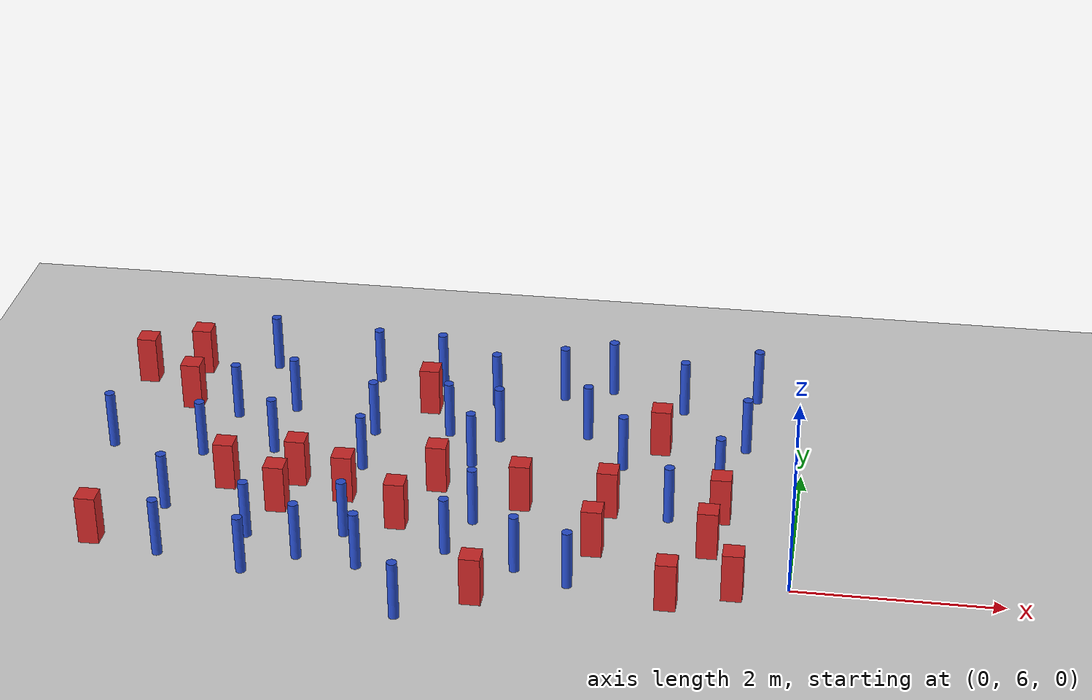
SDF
<sdf version="1.6">
 <world name="default">
  <model name="ground_plane">
   <static>1</static>
   <link name="link">
    <collision name="collision">
     <geometry><plane><normal>0 0 1</normal><size>100 100</size></plane></geometry>
     <surface><friction><ode><mu>100</mu><mu2>50</mu2></ode></friction></surface>
    </collision>
    <visual name="visual">
     <cast_shadows>0</cast_shadows>
     <geometry><plane><normal>0 0 1</normal><size>100 100</size></plane></geometry>
     <material>
      <ambient>1.0 1.0 1.0 1.0</ambient>
      <diffuse>0.8 0.8 0.8 1.0</diffuse>
      <specular>0.01 0.01 0.01 1.000000</specular>
     </material>
    </visual>
   </link>
  </model>
  <model name="square_post_obstacle6">
   <static>true</static>
   <pose>-5.04222654512 6.75807206972 1.91545236811e-07 -7.35059704564e-06 1.12565212e-07 2.39332434364e-05</pose>
   <link name="link">
    <pose>0 0 0.25 0 -0 0</pose>
    <inertial>
     <mass>100</mass>
     <inertia>
      <ixx>0.166667</ixx>
      <ixy>0</ixy>
      <ixz>0</ixz>
      <iyy>0.166667</iyy>
      <iyz>0</iyz>
      <izz>0.166667</izz>
     </inertia>
    </inertial>
    <collision name="collision"><geometry><box><size>.2 .2 .5</size></box></geometry></collision>
    <visual name="visual">
     <geometry><box><size>.2 .2 .5</size></box></geometry>
     <material>
      <script><name>Gazebo/Red</name><uri>file://media/materials/scripts/gazebo.material</uri></script>
     </material>
    </visual>
   </link>
  </model>
  <model name="pole_obstacle6">
   <static>true</static>
   <pose>-5.83699710048 8.39616868612 7.38925637345e-09 -8.471706928e-08 1.24976765081e-08 -1.74513093015e-07</pose>
   <link name="link">
    <pose>0 0 0.3 0 -0 0</pose>
    <inertial>
     <mass>1</mass>
     <inertia><ixx>0.145833</ixx><ixy>0</ixy><ixz>0</ixz><iyy>0.145833</iyy><iyz>0</iyz><izz>0.125</izz></inertia>
    </inertial>
    <collision name="collision">
     <geometry><cylinder><radius>0.05</radius><length>.6</length></cylinder></geometry>
    </collision>
    <visual name="visual">
     <geometry><cylinder><radius>0.05</radius><length>.6</length></cylinder></geometry>
     <material>
      <script><name>Gazebo/Blue</name><uri>file://media/materials/scripts/gazebo.material</uri></script>
     </material>
    </visual>
   </link>
  </model>
  <model name="square_post_obstacle10">
   <static>true</static>
   <pose>-3.8304520646 6.61883451732 1.91545236811e-07 -7.35059704564e-06 1.12565212e-07 2.39332434364e-05</pose>
   <link name="link">
    <pose>0 0 0.25 0 -0 0</pose>
    <inertial>
     <mass>100</mass>
     <inertia>
      <ixx>0.166667</ixx>
      <ixy>0</ixy>
      <ixz>0</ixz>
      <iyy>0.166667</iyy>
      <iyz>0</iyz>
      <izz>0.166667</izz>
     </inertia>
    </inertial>
    <collision name="collision"><geometry><box><size>.2 .2 .5</size></box></geometry></collision>
    <visual name="visual">
     <geometry><box><size>.2 .2 .5</size></box></geometry>
     <material>
      <script><name>Gazebo/Red</name><uri>file://media/materials/scripts/gazebo.material</uri></script>
     </material>
    </visual>
   </link>
  </model>
  <model name="pole_obstacle11">
   <static>true</static>
   <pose>-4.07201410686 5.84191338444 7.38925637345e-09 -8.47170692796e-08 1.24976764786e-08 -1.74513093032e-07</pose>
   <link name="link">
    <pose>0 0 0.3 0 -0 0</pose>
    <inertial>
     <mass>1</mass>
     <inertia><ixx>0.145833</ixx><ixy>0</ixy><ixz>0</ixz><iyy>0.145833</iyy><iyz>0</iyz><izz>0.125</izz></inertia>
    </inertial>
    <collision name="collision">
     <geometry><cylinder><radius>0.05</radius><length>.6</length></cylinder></geometry>
    </collision>
    <visual name="visual">
     <geometry><cylinder><radius>0.05</radius><length>.6</length></cylinder></geometry>
     <material>
      <script><name>Gazebo/Blue</name><uri>file://media/materials/scripts/gazebo.material</uri></script>
     </material>
    </visual>
   </link>
  </model>
  <model name="pole_obstacle12">
   <static>true</static>
   <pose>-6.95213012178 7.66707469394 7.38925637345e-09 -8.47170692796e-08 1.24976764786e-08 -1.74513093032e-07</pose>
   <link name="link">
    <pose>0 0 0.3 0 -0 0</pose>
    <inertial>
     <mass>1</mass>
     <inertia><ixx>0.145833</ixx><ixy>0</ixy><ixz>0</ixz><iyy>0.145833</iyy><iyz>0</iyz><izz>0.125</izz></inertia>
    </inertial>
    <collision name="collision">
     <geometry><cylinder><radius>0.05</radius><length>.6</length></cylinder></geometry>
    </collision>
    <visual name="visual">
     <geometry><cylinder><radius>0.05</radius><length>.6</length></cylinder></geometry>
     <material>
      <script><name>Gazebo/Blue</name><uri>file://media/materials/scripts/gazebo.material</uri></script>
     </material>
    </visual>
   </link>
  </model>
  <model name="pole_obstacle14">
   <static>true</static>
   <pose>-3.08421789567 8.29486062052 7.38925637345e-09 -8.47170692793e-08 1.24976764408e-08 -1.74513093041e-07</pose>
   <link name="link">
    <pose>0 0 0.3 0 -0 0</pose>
    <inertial>
     <mass>1</mass>
     <inertia><ixx>0.145833</ixx><ixy>0</ixy><ixz>0</ixz><iyy>0.145833</iyy><iyz>0</iyz><izz>0.125</izz></inertia>
    </inertial>
    <collision name="collision">
     <geometry><cylinder><radius>0.05</radius><length>.6</length></cylinder></geometry>
    </collision>
    <visual name="visual">
     <geometry><cylinder><radius>0.05</radius><length>.6</length></cylinder></geometry>
     <material>
      <script><name>Gazebo/Blue</name><uri>file://media/materials/scripts/gazebo.material</uri></script>
     </material>
    </visual>
   </link>
  </model>
  <model name="square_post_obstacle33">
   <static>true</static>
   <pose>-4.94480398703 7.25404683142 1.91545236811e-07 -7.35059704564e-06 1.12565212e-07 2.39332434364e-05</pose>
   <link name="link">
    <pose>0 0 0.25 0 -0 0</pose>
    <inertial>
     <mass>100</mass>
     <inertia>
      <ixx>0.166667</ixx>
      <ixy>0</ixy>
      <ixz>0</ixz>
      <iyy>0.166667</iyy>
      <iyz>0</iyz>
      <izz>0.166667</izz>
     </inertia>
    </inertial>
    <collision name="collision"><geometry><box><size>.2 .2 .5</size></box></geometry></collision>
    <visual name="visual">
     <geometry><box><size>.2 .2 .5</size></box></geometry>
     <material>
      <script><name>Gazebo/Red</name><uri>file://media/materials/scripts/gazebo.material</uri></script>
     </material>
    </visual>
   </link>
  </model>
  <model name="pole_obstacle32">
   <static>true</static>
   <pose>-3.60720750429 8.32943406692 7.38925637345e-09 -8.47170692799e-08 1.24976765012e-08 -1.74513093021e-07</pose>
   <link name="link">
    <pose>0 0 0.3 0 -0 0</pose>
    <inertial>
     <mass>1</mass>
     <inertia><ixx>0.145833</ixx><ixy>0</ixy><ixz>0</ixz><iyy>0.145833</iyy><iyz>0</iyz><izz>0.125</izz></inertia>
    </inertial>
    <collision name="collision">
     <geometry><cylinder><radius>0.05</radius><length>.6</length></cylinder></geometry>
    </collision>
    <visual name="visual">
     <geometry><cylinder><radius>0.05</radius><length>.6</length></cylinder></geometry>
     <material>
      <script><name>Gazebo/Blue</name><uri>file://media/materials/scripts/gazebo.material</uri></script>
     </material>
    </visual>
   </link>
  </model>
  <model name="pole_obstacle36">
   <static>true</static>
   <pose>-3.10428934199 6.74589195194 7.38925637345e-09 -8.47170692798e-08 1.24976765033e-08 -1.74513093019e-07</pose>
   <link name="link">
    <pose>0 0 0.3 0 -0 0</pose>
    <inertial>
     <mass>1</mass>
     <inertia><ixx>0.145833</ixx><ixy>0</ixy><ixz>0</ixz><iyy>0.145833</iyy><iyz>0</iyz><izz>0.125</izz></inertia>
    </inertial>
    <collision name="collision">
     <geometry><cylinder><radius>0.05</radius><length>.6</length></cylinder></geometry>
    </collision>
    <visual name="visual">
     <geometry><cylinder><radius>0.05</radius><length>.6</length></cylinder></geometry>
     <material>
      <script><name>Gazebo/Blue</name><uri>file://media/materials/scripts/gazebo.material</uri></script>
     </material>
    </visual>
   </link>
  </model>
  <model name="square_post_obstacle37">
   <static>true</static>
   <pose>-1.11692758528 5.6239052445 1.91545236811e-07 -7.35059704564e-06 1.12565212e-07 2.39332434364e-05</pose>
   <link name="link">
    <pose>0 0 0.25 0 -0 0</pose>
    <inertial>
     <mass>100</mass>
     <inertia>
      <ixx>0.166667</ixx>
      <ixy>0</ixy>
      <ixz>0</ixz>
      <iyy>0.166667</iyy>
      <iyz>0</iyz>
      <izz>0.166667</izz>
     </inertia>
    </inertial>
    <collision name="collision"><geometry><box><size>.2 .2 .5</size></box></geometry></collision>
    <visual name="visual">
     <geometry><box><size>.2 .2 .5</size></box></geometry>
     <material>
      <script><name>Gazebo/Red</name><uri>file://media/materials/scripts/gazebo.material</uri></script>
     </material>
    </visual>
   </link>
  </model>
  <model name="square_post_obstacle39">
   <static>true</static>
   <pose>-3.55115821189 7.33247185414 1.91545236811e-07 -7.35059704564e-06 1.12565212e-07 2.39332434364e-05</pose>
   <link name="link">
    <pose>0 0 0.25 0 -0 0</pose>
    <inertial>
     <mass>100</mass>
     <inertia>
      <ixx>0.166667</ixx>
      <ixy>0</ixy>
      <ixz>0</ixz>
      <iyy>0.166667</iyy>
      <iyz>0</iyz>
      <izz>0.166667</izz>
     </inertia>
    </inertial>
    <collision name="collision"><geometry><box><size>.2 .2 .5</size></box></geometry></collision>
    <visual name="visual">
     <geometry><box><size>.2 .2 .5</size></box></geometry>
     <material>
      <script><name>Gazebo/Red</name><uri>file://media/materials/scripts/gazebo.material</uri></script>
     </material>
    </visual>
   </link>
  </model>
  <model name="square_post_obstacle49">
   <static>true</static>
   <pose>-5.62773222494 7.09899345736 1.91545236811e-07 -7.35059704564e-06 1.12565212e-07 2.39332434364e-05</pose>
   <link name="link">
    <pose>0 0 0.25 0 -0 0</pose>
    <inertial>
     <mass>100</mass>
     <inertia>
      <ixx>0.166667</ixx>
      <ixy>0</ixy>
      <ixz>0</ixz>
      <iyy>0.166667</iyy>
      <iyz>0</iyz>
      <izz>0.166667</izz>
     </inertia>
    </inertial>
    <collision name="collision"><geometry><box><size>.2 .2 .5</size></box></geometry></collision>
    <visual name="visual">
     <geometry><box><size>.2 .2 .5</size></box></geometry>
     <material>
      <script><name>Gazebo/Red</name><uri>file://media/materials/scripts/gazebo.material</uri></script>
     </material>
    </visual>
   </link>
  </model>
  <model name="square_post_obstacle51">
   <static>true</static>
   <pose>-6.6805653706 5.97484447035 1.91545236811e-07 -7.35059704564e-06 1.12565212e-07 2.39332434364e-05</pose>
   <link name="link">
    <pose>0 0 0.25 0 -0 0</pose>
    <inertial>
     <mass>100</mass>
     <inertia>
      <ixx>0.166667</ixx>
      <ixy>0</ixy>
      <ixz>0</ixz>
      <iyy>0.166667</iyy>
      <iyz>0</iyz>
      <izz>0.166667</izz>
     </inertia>
    </inertial>
    <collision name="collision"><geometry><box><size>.2 .2 .5</size></box></geometry></collision>
    <visual name="visual">
     <geometry><box><size>.2 .2 .5</size></box></geometry>
     <material>
      <script><name>Gazebo/Red</name><uri>file://media/materials/scripts/gazebo.material</uri></script>
     </material>
    </visual>
   </link>
  </model>
  <model name="pole_obstacle51">
   <static>true</static>
   <pose>-2.19869617125 8.4587377386 7.38925637345e-09 -8.47170692793e-08 1.24976764408e-08 -1.74513093041e-07</pose>
   <link name="link">
    <pose>0 0 0.3 0 -0 0</pose>
    <inertial>
     <mass>1</mass>
     <inertia><ixx>0.145833</ixx><ixy>0</ixy><ixz>0</ixz><iyy>0.145833</iyy><iyz>0</iyz><izz>0.125</izz></inertia>
    </inertial>
    <collision name="collision">
     <geometry><cylinder><radius>0.05</radius><length>.6</length></cylinder></geometry>
    </collision>
    <visual name="visual">
     <geometry><cylinder><radius>0.05</radius><length>.6</length></cylinder></geometry>
     <material>
      <script><name>Gazebo/Blue</name><uri>file://media/materials/scripts/gazebo.material</uri></script>
     </material>
    </visual>
   </link>
  </model>
  <model name="pole_obstacle58">
   <static>true</static>
   <pose>-4.52280086864 9.32079651259 7.38925637345e-09 -8.471706928e-08 1.24976765081e-08 -1.74513093015e-07</pose>
   <link name="link">
    <pose>0 0 0.3 0 -0 0</pose>
    <inertial>
     <mass>1</mass>
     <inertia><ixx>0.145833</ixx><ixy>0</ixy><ixz>0</ixz><iyy>0.145833</iyy><iyz>0</iyz><izz>0.125</izz></inertia>
    </inertial>
    <collision name="collision">
     <geometry><cylinder><radius>0.05</radius><length>.6</length></cylinder></geometry>
    </collision>
    <visual name="visual">
     <geometry><cylinder><radius>0.05</radius><length>.6</length></cylinder></geometry>
     <material>
      <script><name>Gazebo/Blue</name><uri>file://media/materials/scripts/gazebo.material</uri></script>
     </material>
    </visual>
   </link>
  </model>
  <model name="square_post_obstacle71">
   <static>true</static>
   <pose>-6.4228862466 9.30618783547 1.91545236811e-07 -7.35059704564e-06 1.12565212e-07 2.39332434364e-05</pose>
   <link name="link">
    <pose>0 0 0.25 0 -0 0</pose>
    <inertial>
     <mass>100</mass>
     <inertia>
      <ixx>0.166667</ixx>
      <ixy>0</ixy>
      <ixz>0</ixz>
      <iyy>0.166667</iyy>
      <iyz>0</iyz>
      <izz>0.166667</izz>
     </inertia>
    </inertial>
    <collision name="collision"><geometry><box><size>.2 .2 .5</size></box></geometry></collision>
    <visual name="visual">
     <geometry><box><size>.2 .2 .5</size></box></geometry>
     <material>
      <script><name>Gazebo/Red</name><uri>file://media/materials/scripts/gazebo.material</uri></script>
     </material>
    </visual>
   </link>
  </model>
  <model name="pole_obstacle70">
   <static>true</static>
   <pose>-0.791818067919 7.64563131138 7.38925637345e-09 -8.471706928e-08 1.24976765086e-08 -1.74513093015e-07</pose>
   <link name="link">
    <pose>0 0 0.3 0 -0 0</pose>
    <inertial>
     <mass>1</mass>
     <inertia><ixx>0.145833</ixx><ixy>0</ixy><ixz>0</ixz><iyy>0.145833</iyy><iyz>0</iyz><izz>0.125</izz></inertia>
    </inertial>
    <collision name="collision">
     <geometry><cylinder><radius>0.05</radius><length>.6</length></cylinder></geometry>
    </collision>
    <visual name="visual">
     <geometry><cylinder><radius>0.05</radius><length>.6</length></cylinder></geometry>
     <material>
      <script><name>Gazebo/Blue</name><uri>file://media/materials/scripts/gazebo.material</uri></script>
     </material>
    </visual>
   </link>
  </model>
  <model name="pole_obstacle74">
   <static>true</static>
   <pose>-4.3648094271 7.57871124197 7.38925637345e-09 -8.47170692796e-08 1.24976764786e-08 -1.74513093032e-07</pose>
   <link name="link">
    <pose>0 0 0.3 0 -0 0</pose>
    <inertial>
     <mass>1</mass>
     <inertia><ixx>0.145833</ixx><ixy>0</ixy><ixz>0</ixz><iyy>0.145833</iyy><iyz>0</iyz><izz>0.125</izz></inertia>
    </inertial>
    <collision name="collision">
     <geometry><cylinder><radius>0.05</radius><length>.6</length></cylinder></geometry>
    </collision>
    <visual name="visual">
     <geometry><cylinder><radius>0.05</radius><length>.6</length></cylinder></geometry>
     <material>
      <script><name>Gazebo/Blue</name><uri>file://media/materials/scripts/gazebo.material</uri></script>
     </material>
    </visual>
   </link>
  </model>
  <model name="pole_obstacle79">
   <static>true</static>
   <pose>-5.22256206254 6.22706692064 7.38925637345e-09 -8.47170692796e-08 1.24976764786e-08 -1.74513093032e-07</pose>
   <link name="link">
    <pose>0 0 0.3 0 -0 0</pose>
    <inertial>
     <mass>1</mass>
     <inertia><ixx>0.145833</ixx><ixy>0</ixy><ixz>0</ixz><iyy>0.145833</iyy><iyz>0</iyz><izz>0.125</izz></inertia>
    </inertial>
    <collision name="collision">
     <geometry><cylinder><radius>0.05</radius><length>.6</length></cylinder></geometry>
    </collision>
    <visual name="visual">
     <geometry><cylinder><radius>0.05</radius><length>.6</length></cylinder></geometry>
     <material>
      <script><name>Gazebo/Blue</name><uri>file://media/materials/scripts/gazebo.material</uri></script>
     </material>
    </visual>
   </link>
  </model>
  <model name="square_post_obstacle79">
   <static>true</static>
   <pose>-2.68884868081 7.10233746913 1.91545236811e-07 -7.35059704564e-06 1.12565212e-07 2.39332434364e-05</pose>
   <link name="link">
    <pose>0 0 0.25 0 -0 0</pose>
    <inertial>
     <mass>100</mass>
     <inertia>
      <ixx>0.166667</ixx>
      <ixy>0</ixy>
      <ixz>0</ixz>
      <iyy>0.166667</iyy>
      <iyz>0</iyz>
      <izz>0.166667</izz>
     </inertia>
    </inertial>
    <collision name="collision"><geometry><box><size>.2 .2 .5</size></box></geometry></collision>
    <visual name="visual">
     <geometry><box><size>.2 .2 .5</size></box></geometry>
     <material>
      <script><name>Gazebo/Red</name><uri>file://media/materials/scripts/gazebo.material</uri></script>
     </material>
    </visual>
   </link>
  </model>
  <model name="pole_obstacle84">
   <static>true</static>
   <pose>-3.28351288301 6.20397184424 7.38925637345e-09 -8.47170692798e-08 1.24976765033e-08 -1.74513093019e-07</pose>
   <link name="link">
    <pose>0 0 0.3 0 -0 0</pose>
    <inertial>
     <mass>1</mass>
     <inertia><ixx>0.145833</ixx><ixy>0</ixy><ixz>0</ixz><iyy>0.145833</iyy><iyz>0</iyz><izz>0.125</izz></inertia>
    </inertial>
    <collision name="collision">
     <geometry><cylinder><radius>0.05</radius><length>.6</length></cylinder></geometry>
    </collision>
    <visual name="visual">
     <geometry><cylinder><radius>0.05</radius><length>.6</length></cylinder></geometry>
     <material>
      <script><name>Gazebo/Blue</name><uri>file://media/materials/scripts/gazebo.material</uri></script>
     </material>
    </visual>
   </link>
  </model>
  <model name="pole_obstacle86">
   <static>true</static>
   <pose>-2.58511004783 5.99748606893 7.38925637345e-09 -8.47170692798e-08 1.24976765033e-08 -1.74513093019e-07</pose>
   <link name="link">
    <pose>0 0 0.3 0 -0 0</pose>
    <inertial>
     <mass>1</mass>
     <inertia><ixx>0.145833</ixx><ixy>0</ixy><ixz>0</ixz><iyy>0.145833</iyy><iyz>0</iyz><izz>0.125</izz></inertia>
    </inertial>
    <collision name="collision">
     <geometry><cylinder><radius>0.05</radius><length>.6</length></cylinder></geometry>
    </collision>
    <visual name="visual">
     <geometry><cylinder><radius>0.05</radius><length>.6</length></cylinder></geometry>
     <material>
      <script><name>Gazebo/Blue</name><uri>file://media/materials/scripts/gazebo.material</uri></script>
     </material>
    </visual>
   </link>
  </model>
  <model name="pole_obstacle92">
   <static>true</static>
   <pose>-1.27379688817 9.08377206896 7.38925637345e-09 -8.47170692798e-08 1.24976764881e-08 -1.74513093027e-07</pose>
   <link name="link">
    <pose>0 0 0.3 0 -0 0</pose>
    <inertial>
     <mass>1</mass>
     <inertia><ixx>0.145833</ixx><ixy>0</ixy><ixz>0</ixz><iyy>0.145833</iyy><iyz>0</iyz><izz>0.125</izz></inertia>
    </inertial>
    <collision name="collision">
     <geometry><cylinder><radius>0.05</radius><length>.6</length></cylinder></geometry>
    </collision>
    <visual name="visual">
     <geometry><cylinder><radius>0.05</radius><length>.6</length></cylinder></geometry>
     <material>
      <script><name>Gazebo/Blue</name><uri>file://media/materials/scripts/gazebo.material</uri></script>
     </material>
    </visual>
   </link>
  </model>
  <model name="pole_obstacle95">
   <static>true</static>
   <pose>-0.536408846597 9.41058317554 7.38925637345e-09 -8.47170692796e-08 1.24976764704e-08 -1.74513093037e-07</pose>
   <link name="link">
    <pose>0 0 0.3 0 -0 0</pose>
    <inertial>
     <mass>1</mass>
     <inertia><ixx>0.145833</ixx><ixy>0</ixy><ixz>0</ixz><iyy>0.145833</iyy><iyz>0</iyz><izz>0.125</izz></inertia>
    </inertial>
    <collision name="collision">
     <geometry><cylinder><radius>0.05</radius><length>.6</length></cylinder></geometry>
    </collision>
    <visual name="visual">
     <geometry><cylinder><radius>0.05</radius><length>.6</length></cylinder></geometry>
     <material>
      <script><name>Gazebo/Blue</name><uri>file://media/materials/scripts/gazebo.material</uri></script>
     </material>
    </visual>
   </link>
  </model>
  <model name="pole_obstacle107">
   <static>true</static>
   <pose>-5.12755100078 5.62983232443 7.38925637345e-09 -8.47170692796e-08 1.24976764786e-08 -1.74513093032e-07</pose>
   <link name="link">
    <pose>0 0 0.3 0 -0 0</pose>
    <inertial>
     <mass>1</mass>
     <inertia><ixx>0.145833</ixx><ixy>0</ixy><ixz>0</ixz><iyy>0.145833</iyy><iyz>0</iyz><izz>0.125</izz></inertia>
    </inertial>
    <collision name="collision">
     <geometry><cylinder><radius>0.05</radius><length>.6</length></cylinder></geometry>
    </collision>
    <visual name="visual">
     <geometry><cylinder><radius>0.05</radius><length>.6</length></cylinder></geometry>
     <material>
      <script><name>Gazebo/Blue</name><uri>file://media/materials/scripts/gazebo.material</uri></script>
     </material>
    </visual>
   </link>
  </model>
  <model name="square_post_obstacle95">
   <static>true</static>
   <pose>-3.88314466818 8.80376058349 1.91545236811e-07 -7.35059704564e-06 1.12565212e-07 2.39332434364e-05</pose>
   <link name="link">
    <pose>0 0 0.25 0 -0 0</pose>
    <inertial>
     <mass>100</mass>
     <inertia>
      <ixx>0.166667</ixx>
      <ixy>0</ixy>
      <ixz>0</ixz>
      <iyy>0.166667</iyy>
      <iyz>0</iyz>
      <izz>0.166667</izz>
     </inertia>
    </inertial>
    <collision name="collision"><geometry><box><size>.2 .2 .5</size></box></geometry></collision>
    <visual name="visual">
     <geometry><box><size>.2 .2 .5</size></box></geometry>
     <material>
      <script><name>Gazebo/Red</name><uri>file://media/materials/scripts/gazebo.material</uri></script>
     </material>
    </visual>
   </link>
  </model>
  <model name="pole_obstacle112">
   <static>true</static>
   <pose>-5.65830604018 9.44890726719 7.38925637345e-09 -8.471706928e-08 1.24976765081e-08 -1.74513093015e-07</pose>
   <link name="link">
    <pose>0 0 0.3 0 -0 0</pose>
    <inertial>
     <mass>1</mass>
     <inertia><ixx>0.145833</ixx><ixy>0</ixy><ixz>0</ixz><iyy>0.145833</iyy><iyz>0</iyz><izz>0.125</izz></inertia>
    </inertial>
    <collision name="collision">
     <geometry><cylinder><radius>0.05</radius><length>.6</length></cylinder></geometry>
    </collision>
    <visual name="visual">
     <geometry><cylinder><radius>0.05</radius><length>.6</length></cylinder></geometry>
     <material>
      <script><name>Gazebo/Blue</name><uri>file://media/materials/scripts/gazebo.material</uri></script>
     </material>
    </visual>
   </link>
  </model>
  <model name="square_post_obstacle101">
   <static>true</static>
   <pose>-0.524228767625 5.85957678765 1.91545236811e-07 -7.35059704564e-06 1.12565212e-07 2.39332434364e-05</pose>
   <link name="link">
    <pose>0 0 0.25 0 -0 0</pose>
    <inertial>
     <mass>100</mass>
     <inertia>
      <ixx>0.166667</ixx>
      <ixy>0</ixy>
      <ixz>0</ixz>
      <iyy>0.166667</iyy>
      <iyz>0</iyz>
      <izz>0.166667</izz>
     </inertia>
    </inertial>
    <collision name="collision"><geometry><box><size>.2 .2 .5</size></box></geometry></collision>
    <visual name="visual">
     <geometry><box><size>.2 .2 .5</size></box></geometry>
     <material>
      <script><name>Gazebo/Red</name><uri>file://media/materials/scripts/gazebo.material</uri></script>
     </material>
    </visual>
   </link>
  </model>
  <model name="pole_obstacle114">
   <static>true</static>
   <pose>-3.21876895388 8.98443016584 7.38925637345e-09 -8.47170692793e-08 1.24976764408e-08 -1.74513093041e-07</pose>
   <link name="link">
    <pose>0 0 0.3 0 -0 0</pose>
    <inertial>
     <mass>1</mass>
     <inertia><ixx>0.145833</ixx><ixy>0</ixy><ixz>0</ixz><iyy>0.145833</iyy><iyz>0</iyz><izz>0.125</izz></inertia>
    </inertial>
    <collision name="collision">
     <geometry><cylinder><radius>0.05</radius><length>.6</length></cylinder></geometry>
    </collision>
    <visual name="visual">
     <geometry><cylinder><radius>0.05</radius><length>.6</length></cylinder></geometry>
     <material>
      <script><name>Gazebo/Blue</name><uri>file://media/materials/scripts/gazebo.material</uri></script>
     </material>
    </visual>
   </link>
  </model>
  <model name="pole_obstacle116">
   <static>true</static>
   <pose>-3.55963117818 5.09897630997 7.38925637345e-09 -8.47170692798e-08 1.24976765033e-08 -1.74513093019e-07</pose>
   <link name="link">
    <pose>0 0 0.3 0 -0 0</pose>
    <inertial>
     <mass>1</mass>
     <inertia><ixx>0.145833</ixx><ixy>0</ixy><ixz>0</ixz><iyy>0.145833</iyy><iyz>0</iyz><izz>0.125</izz></inertia>
    </inertial>
    <collision name="collision">
     <geometry><cylinder><radius>0.05</radius><length>.6</length></cylinder></geometry>
    </collision>
    <visual name="visual">
     <geometry><cylinder><radius>0.05</radius><length>.6</length></cylinder></geometry>
     <material>
      <script><name>Gazebo/Blue</name><uri>file://media/materials/scripts/gazebo.material</uri></script>
     </material>
    </visual>
   </link>
  </model>
  <model name="pole_obstacle119">
   <static>true</static>
   <pose>-2.05848564943 5.80485382445 7.38925637345e-09 -8.47170692798e-08 1.24976765033e-08 -1.74513093019e-07</pose>
   <link name="link">
    <pose>0 0 0.3 0 -0 0</pose>
    <inertial>
     <mass>1</mass>
     <inertia><ixx>0.145833</ixx><ixy>0</ixy><ixz>0</ixz><iyy>0.145833</iyy><iyz>0</iyz><izz>0.125</izz></inertia>
    </inertial>
    <collision name="collision">
     <geometry><cylinder><radius>0.05</radius><length>.6</length></cylinder></geometry>
    </collision>
    <visual name="visual">
     <geometry><cylinder><radius>0.05</radius><length>.6</length></cylinder></geometry>
     <material>
      <script><name>Gazebo/Blue</name><uri>file://media/materials/scripts/gazebo.material</uri></script>
     </material>
    </visual>
   </link>
  </model>
  <model name="square_post_obstacle109">
   <static>true</static>
   <pose>-2.9026986761 5.47261307972 1.91545236811e-07 -7.35059704564e-06 1.12565212e-07 2.39332434364e-05</pose>
   <link name="link">
    <pose>0 0 0.25 0 -0 0</pose>
    <inertial>
     <mass>100</mass>
     <inertia>
      <ixx>0.166667</ixx>
      <ixy>0</ixy>
      <ixz>0</ixz>
      <iyy>0.166667</iyy>
      <iyz>0</iyz>
      <izz>0.166667</izz>
     </inertia>
    </inertial>
    <collision name="collision"><geometry><box><size>.2 .2 .5</size></box></geometry></collision>
    <visual name="visual">
     <geometry><box><size>.2 .2 .5</size></box></geometry>
     <material>
      <script><name>Gazebo/Red</name><uri>file://media/materials/scripts/gazebo.material</uri></script>
     </material>
    </visual>
   </link>
  </model>
  <model name="square_post_obstacle112">
   <static>true</static>
   <pose>-6.95027445436 9.04635694806 1.91545236811e-07 -7.35059704564e-06 1.12565212e-07 2.39332434364e-05</pose>
   <link name="link">
    <pose>0 0 0.25 0 -0 0</pose>
    <inertial>
     <mass>100</mass>
     <inertia>
      <ixx>0.166667</ixx>
      <ixy>0</ixy>
      <ixz>0</ixz>
      <iyy>0.166667</iyy>
      <iyz>0</iyz>
      <izz>0.166667</izz>
     </inertia>
    </inertial>
    <collision name="collision"><geometry><box><size>.2 .2 .5</size></box></geometry></collision>
    <visual name="visual">
     <geometry><box><size>.2 .2 .5</size></box></geometry>
     <material>
      <script><name>Gazebo/Red</name><uri>file://media/materials/scripts/gazebo.material</uri></script>
     </material>
    </visual>
   </link>
  </model>
  <model name="pole_obstacle127">
   <static>true</static>
   <pose>-3.84503067705 9.31294180528 7.38925637345e-09 -8.47170692793e-08 1.24976764408e-08 -1.74513093041e-07</pose>
   <link name="link">
    <pose>0 0 0.3 0 -0 0</pose>
    <inertial>
     <mass>1</mass>
     <inertia><ixx>0.145833</ixx><ixy>0</ixy><ixz>0</ixz><iyy>0.145833</iyy><iyz>0</iyz><izz>0.125</izz></inertia>
    </inertial>
    <collision name="collision">
     <geometry><cylinder><radius>0.05</radius><length>.6</length></cylinder></geometry>
    </collision>
    <visual name="visual">
     <geometry><cylinder><radius>0.05</radius><length>.6</length></cylinder></geometry>
     <material>
      <script><name>Gazebo/Blue</name><uri>file://media/materials/scripts/gazebo.material</uri></script>
     </material>
    </visual>
   </link>
  </model>
  <model name="pole_obstacle136">
   <static>true</static>
   <pose>-3.28884151807 7.77305704385 7.38925637345e-09 -8.47170692798e-08 1.24976765033e-08 -1.74513093019e-07</pose>
   <link name="link">
    <pose>0 0 0.3 0 -0 0</pose>
    <inertial>
     <mass>1</mass>
     <inertia><ixx>0.145833</ixx><ixy>0</ixy><ixz>0</ixz><iyy>0.145833</iyy><iyz>0</iyz><izz>0.125</izz></inertia>
    </inertial>
    <collision name="collision">
     <geometry><cylinder><radius>0.05</radius><length>.6</length></cylinder></geometry>
    </collision>
    <visual name="visual">
     <geometry><cylinder><radius>0.05</radius><length>.6</length></cylinder></geometry>
     <material>
      <script><name>Gazebo/Blue</name><uri>file://media/materials/scripts/gazebo.material</uri></script>
     </material>
    </visual>
   </link>
  </model>
  <model name="pole_obstacle137">
   <static>true</static>
   <pose>-4.66502731336 5.9263769425 7.38925637345e-09 -8.47170692796e-08 1.24976764786e-08 -1.74513093032e-07</pose>
   <link name="link">
    <pose>0 0 0.3 0 -0 0</pose>
    <inertial>
     <mass>1</mass>
     <inertia><ixx>0.145833</ixx><ixy>0</ixy><ixz>0</ixz><iyy>0.145833</iyy><iyz>0</iyz><izz>0.125</izz></inertia>
    </inertial>
    <collision name="collision">
     <geometry><cylinder><radius>0.05</radius><length>.6</length></cylinder></geometry>
    </collision>
    <visual name="visual">
     <geometry><cylinder><radius>0.05</radius><length>.6</length></cylinder></geometry>
     <material>
      <script><name>Gazebo/Blue</name><uri>file://media/materials/scripts/gazebo.material</uri></script>
     </material>
    </visual>
   </link>
  </model>
  <model name="pole_obstacle142">
   <static>true</static>
   <pose>-1.7811476286 7.9233840048 7.38925637345e-09 -8.47170692799e-08 1.24976765033e-08 -1.74513093018e-07</pose>
   <link name="link">
    <pose>0 0 0.3 0 -0 0</pose>
    <inertial>
     <mass>1</mass>
     <inertia><ixx>0.145833</ixx><ixy>0</ixy><ixz>0</ixz><iyy>0.145833</iyy><iyz>0</iyz><izz>0.125</izz></inertia>
    </inertial>
    <collision name="collision">
     <geometry><cylinder><radius>0.05</radius><length>.6</length></cylinder></geometry>
    </collision>
    <visual name="visual">
     <geometry><cylinder><radius>0.05</radius><length>.6</length></cylinder></geometry>
     <material>
      <script><name>Gazebo/Blue</name><uri>file://media/materials/scripts/gazebo.material</uri></script>
     </material>
    </visual>
   </link>
  </model>
  <model name="square_post_obstacle139">
   <static>true</static>
   <pose>-0.738309847255 7.13124001648 1.91545236811e-07 -7.35059704564e-06 1.12565212e-07 2.39332434364e-05</pose>
   <link name="link">
    <pose>0 0 0.25 0 -0 0</pose>
    <inertial>
     <mass>100</mass>
     <inertia>
      <ixx>0.166667</ixx>
      <ixy>0</ixy>
      <ixz>0</ixz>
      <iyy>0.166667</iyy>
      <iyz>0</iyz>
      <izz>0.166667</izz>
     </inertia>
    </inertial>
    <collision name="collision"><geometry><box><size>.2 .2 .5</size></box></geometry></collision>
    <visual name="visual">
     <geometry><box><size>.2 .2 .5</size></box></geometry>
     <material>
      <script><name>Gazebo/Red</name><uri>file://media/materials/scripts/gazebo.material</uri></script>
     </material>
    </visual>
   </link>
  </model>
  <model name="pole_obstacle156">
   <static>true</static>
   <pose>-2.04626329891 9.39892426092 7.38925637345e-09 -8.47170692797e-08 1.24976764827e-08 -1.7451309303e-07</pose>
   <link name="link">
    <pose>0 0 0.3 0 -0 0</pose>
    <inertial>
     <mass>1</mass>
     <inertia><ixx>0.145833</ixx><ixy>0</ixy><ixz>0</ixz><iyy>0.145833</iyy><iyz>0</iyz><izz>0.125</izz></inertia>
    </inertial>
    <collision name="collision">
     <geometry><cylinder><radius>0.05</radius><length>.6</length></cylinder></geometry>
    </collision>
    <visual name="visual">
     <geometry><cylinder><radius>0.05</radius><length>.6</length></cylinder></geometry>
     <material>
      <script><name>Gazebo/Blue</name><uri>file://media/materials/scripts/gazebo.material</uri></script>
     </material>
    </visual>
   </link>
  </model>
  <model name="pole_obstacle161">
   <static>true</static>
   <pose>-5.98785781739 5.8086545625 7.38925637345e-09 -8.47170692796e-08 1.24976764786e-08 -1.74513093032e-07</pose>
   <link name="link">
    <pose>0 0 0.3 0 -0 0</pose>
    <inertial>
     <mass>1</mass>
     <inertia><ixx>0.145833</ixx><ixy>0</ixy><ixz>0</ixz><iyy>0.145833</iyy><iyz>0</iyz><izz>0.125</izz></inertia>
    </inertial>
    <collision name="collision">
     <geometry><cylinder><radius>0.05</radius><length>.6</length></cylinder></geometry>
    </collision>
    <visual name="visual">
     <geometry><cylinder><radius>0.05</radius><length>.6</length></cylinder></geometry>
     <material>
      <script><name>Gazebo/Blue</name><uri>file://media/materials/scripts/gazebo.material</uri></script>
     </material>
    </visual>
   </link>
  </model>
  <model name="square_post_obstacle155">
   <static>true</static>
   <pose>-0.812875502283 6.52574940707 1.91545236811e-07 -7.35059704564e-06 1.12565212e-07 2.39332434364e-05</pose>
   <link name="link">
    <pose>0 0 0.25 0 -0 0</pose>
    <inertial>
     <mass>100</mass>
     <inertia>
      <ixx>0.166667</ixx>
      <ixy>0</ixy>
      <ixz>0</ixz>
      <iyy>0.166667</iyy>
      <iyz>0</iyz>
      <izz>0.166667</izz>
     </inertia>
    </inertial>
    <collision name="collision"><geometry><box><size>.2 .2 .5</size></box></geometry></collision>
    <visual name="visual">
     <geometry><box><size>.2 .2 .5</size></box></geometry>
     <material>
      <script><name>Gazebo/Red</name><uri>file://media/materials/scripts/gazebo.material</uri></script>
     </material>
    </visual>
   </link>
  </model>
  <model name="pole_obstacle166">
   <static>true</static>
   <pose>-6.13042038911 6.61105536372 7.38925637345e-09 -8.47170692796e-08 1.24976764786e-08 -1.74513093032e-07</pose>
   <link name="link">
    <pose>0 0 0.3 0 -0 0</pose>
    <inertial>
     <mass>1</mass>
     <inertia><ixx>0.145833</ixx><ixy>0</ixy><ixz>0</ixz><iyy>0.145833</iyy><iyz>0</iyz><izz>0.125</izz></inertia>
    </inertial>
    <collision name="collision">
     <geometry><cylinder><radius>0.05</radius><length>.6</length></cylinder></geometry>
    </collision>
    <visual name="visual">
     <geometry><cylinder><radius>0.05</radius><length>.6</length></cylinder></geometry>
     <material>
      <script><name>Gazebo/Blue</name><uri>file://media/materials/scripts/gazebo.material</uri></script>
     </material>
    </visual>
   </link>
  </model>
  <model name="pole_obstacle167">
   <static>true</static>
   <pose>-5.31409764225 7.77214688776 7.38925637345e-09 -8.47170692796e-08 1.24976764786e-08 -1.74513093032e-07</pose>
   <link name="link">
    <pose>0 0 0.3 0 -0 0</pose>
    <inertial>
     <mass>1</mass>
     <inertia><ixx>0.145833</ixx><ixy>0</ixy><ixz>0</ixz><iyy>0.145833</iyy><iyz>0</iyz><izz>0.125</izz></inertia>
    </inertial>
    <collision name="collision">
     <geometry><cylinder><radius>0.05</radius><length>.6</length></cylinder></geometry>
    </collision>
    <visual name="visual">
     <geometry><cylinder><radius>0.05</radius><length>.6</length></cylinder></geometry>
     <material>
      <script><name>Gazebo/Blue</name><uri>file://media/materials/scripts/gazebo.material</uri></script>
     </material>
    </visual>
   </link>
  </model>
  <model name="pole_obstacle169">
   <static>true</static>
   <pose>-6.01660212536 7.62562904993 7.38925637345e-09 -8.47170692796e-08 1.24976764786e-08 -1.74513093032e-07</pose>
   <link name="link">
    <pose>0 0 0.3 0 -0 0</pose>
    <inertial>
     <mass>1</mass>
     <inertia><ixx>0.145833</ixx><ixy>0</ixy><ixz>0</ixz><iyy>0.145833</iyy><iyz>0</iyz><izz>0.125</izz></inertia>
    </inertial>
    <collision name="collision">
     <geometry><cylinder><radius>0.05</radius><length>.6</length></cylinder></geometry>
    </collision>
    <visual name="visual">
     <geometry><cylinder><radius>0.05</radius><length>.6</length></cylinder></geometry>
     <material>
      <script><name>Gazebo/Blue</name><uri>file://media/materials/scripts/gazebo.material</uri></script>
     </material>
    </visual>
   </link>
  </model>
  <model name="pole_obstacle173">
   <static>true</static>
   <pose>-0.582232455901 8.4131425432 7.38925637345e-09 -8.47170692797e-08 1.249767648e-08 -1.74513093032e-07</pose>
   <link name="link">
    <pose>0 0 0.3 0 -0 0</pose>
    <inertial>
     <mass>1</mass>
     <inertia><ixx>0.145833</ixx><ixy>0</ixy><ixz>0</ixz><iyy>0.145833</iyy><iyz>0</iyz><izz>0.125</izz></inertia>
    </inertial>
    <collision name="collision">
     <geometry><cylinder><radius>0.05</radius><length>.6</length></cylinder></geometry>
    </collision>
    <visual name="visual">
     <geometry><cylinder><radius>0.05</radius><length>.6</length></cylinder></geometry>
     <material>
      <script><name>Gazebo/Blue</name><uri>file://media/materials/scripts/gazebo.material</uri></script>
     </material>
    </visual>
   </link>
  </model>
  <model name="pole_obstacle175">
   <static>true</static>
   <pose>-4.29943839229 6.36418943323 7.38925637345e-09 -8.47170692796e-08 1.24976764786e-08 -1.74513093032e-07</pose>
   <link name="link">
    <pose>0 0 0.3 0 -0 0</pose>
    <inertial>
     <mass>1</mass>
     <inertia><ixx>0.145833</ixx><ixy>0</ixy><ixz>0</ixz><iyy>0.145833</iyy><iyz>0</iyz><izz>0.125</izz></inertia>
    </inertial>
    <collision name="collision">
     <geometry><cylinder><radius>0.05</radius><length>.6</length></cylinder></geometry>
    </collision>
    <visual name="visual">
     <geometry><cylinder><radius>0.05</radius><length>.6</length></cylinder></geometry>
     <material>
      <script><name>Gazebo/Blue</name><uri>file://media/materials/scripts/gazebo.material</uri></script>
     </material>
    </visual>
   </link>
  </model>
  <model name="square_post_obstacle168">
   <static>true</static>
   <pose>-6.35168361537 8.5732449643 1.91545236811e-07 -7.35059704564e-06 1.12565212e-07 2.39332434364e-05</pose>
   <link name="link">
    <pose>0 0 0.25 0 -0 0</pose>
    <inertial>
     <mass>100</mass>
     <inertia>
      <ixx>0.166667</ixx>
      <ixy>0</ixy>
      <ixz>0</ixz>
      <iyy>0.166667</iyy>
      <iyz>0</iyz>
      <izz>0.166667</izz>
     </inertia>
    </inertial>
    <collision name="collision"><geometry><box><size>.2 .2 .5</size></box></geometry></collision>
    <visual name="visual">
     <geometry><box><size>.2 .2 .5</size></box></geometry>
     <material>
      <script><name>Gazebo/Red</name><uri>file://media/materials/scripts/gazebo.material</uri></script>
     </material>
    </visual>
   </link>
  </model>
  <model name="pole_obstacle180">
   <static>true</static>
   <pose>-5.27151089346 8.59564503821 7.38925637345e-09 -8.471706928e-08 1.24976765081e-08 -1.74513093015e-07</pose>
   <link name="link">
    <pose>0 0 0.3 0 -0 0</pose>
    <inertial>
     <mass>1</mass>
     <inertia><ixx>0.145833</ixx><ixy>0</ixy><ixz>0</ixz><iyy>0.145833</iyy><iyz>0</iyz><izz>0.125</izz></inertia>
    </inertial>
    <collision name="collision">
     <geometry><cylinder><radius>0.05</radius><length>.6</length></cylinder></geometry>
    </collision>
    <visual name="visual">
     <geometry><cylinder><radius>0.05</radius><length>.6</length></cylinder></geometry>
     <material>
      <script><name>Gazebo/Blue</name><uri>file://media/materials/scripts/gazebo.material</uri></script>
     </material>
    </visual>
   </link>
  </model>
  <model name="pole_obstacle182">
   <static>true</static>
   <pose>-1.23469216909 7.04521803984 7.38925637345e-09 -8.47170692799e-08 1.24976765033e-08 -1.74513093018e-07</pose>
   <link name="link">
    <pose>0 0 0.3 0 -0 0</pose>
    <inertial>
     <mass>1</mass>
     <inertia><ixx>0.145833</ixx><ixy>0</ixy><ixz>0</ixz><iyy>0.145833</iyy><iyz>0</iyz><izz>0.125</izz></inertia>
    </inertial>
    <collision name="collision">
     <geometry><cylinder><radius>0.05</radius><length>.6</length></cylinder></geometry>
    </collision>
    <visual name="visual">
     <geometry><cylinder><radius>0.05</radius><length>.6</length></cylinder></geometry>
     <material>
      <script><name>Gazebo/Blue</name><uri>file://media/materials/scripts/gazebo.material</uri></script>
     </material>
    </visual>
   </link>
  </model>
  <model name="pole_obstacle184">
   <static>true</static>
   <pose>-2.53613798521 9.20499178258 7.38925637345e-09 -8.47170692793e-08 1.24976764408e-08 -1.74513093041e-07</pose>
   <link name="link">
    <pose>0 0 0.3 0 -0 0</pose>
    <inertial>
     <mass>1</mass>
     <inertia><ixx>0.145833</ixx><ixy>0</ixy><ixz>0</ixz><iyy>0.145833</iyy><iyz>0</iyz><izz>0.125</izz></inertia>
    </inertial>
    <collision name="collision">
     <geometry><cylinder><radius>0.05</radius><length>.6</length></cylinder></geometry>
    </collision>
    <visual name="visual">
     <geometry><cylinder><radius>0.05</radius><length>.6</length></cylinder></geometry>
     <material>
      <script><name>Gazebo/Blue</name><uri>file://media/materials/scripts/gazebo.material</uri></script>
     </material>
    </visual>
   </link>
  </model>
  <model name="square_post_obstacle189">
   <static>true</static>
   <pose>-1.43552789497 8.3137487218 1.91545236811e-07 -7.35059704564e-06 1.12565212e-07 2.39332434364e-05</pose>
   <link name="link">
    <pose>0 0 0.25 0 -0 0</pose>
    <inertial>
     <mass>100</mass>
     <inertia>
      <ixx>0.166667</ixx>
      <ixy>0</ixy>
      <ixz>0</ixz>
      <iyy>0.166667</iyy>
      <iyz>0</iyz>
      <izz>0.166667</izz>
     </inertia>
    </inertial>
    <collision name="collision"><geometry><box><size>.2 .2 .5</size></box></geometry></collision>
    <visual name="visual">
     <geometry><box><size>.2 .2 .5</size></box></geometry>
     <material>
      <script><name>Gazebo/Red</name><uri>file://media/materials/scripts/gazebo.material</uri></script>
     </material>
    </visual>
   </link>
  </model>
  <model name="square_post_obstacle195">
   <static>true</static>
   <pose>-1.89839180534 6.40899714212 1.91545236811e-07 -7.35059704564e-06 1.12565212e-07 2.39332434364e-05</pose>
   <link name="link">
    <pose>0 0 0.25 0 -0 0</pose>
    <inertial>
     <mass>100</mass>
     <inertia>
      <ixx>0.166667</ixx>
      <ixy>0</ixy>
      <ixz>0</ixz>
      <iyy>0.166667</iyy>
      <iyz>0</iyz>
      <izz>0.166667</izz>
     </inertia>
    </inertial>
    <collision name="collision"><geometry><box><size>.2 .2 .5</size></box></geometry></collision>
    <visual name="visual">
     <geometry><box><size>.2 .2 .5</size></box></geometry>
     <material>
      <script><name>Gazebo/Red</name><uri>file://media/materials/scripts/gazebo.material</uri></script>
     </material>
    </visual>
   </link>
  </model>
  <model name="square_post_obstacle199">
   <static>true</static>
   <pose>-1.83220241124 7.09995461583 1.91545236811e-07 -7.35059704564e-06 1.12565212e-07 2.39332434364e-05</pose>
   <link name="link">
    <pose>0 0 0.25 0 -0 0</pose>
    <inertial>
     <mass>100</mass>
     <inertia>
      <ixx>0.166667</ixx>
      <ixy>0</ixy>
      <ixz>0</ixz>
      <iyy>0.166667</iyy>
      <iyz>0</iyz>
      <izz>0.166667</izz>
     </inertia>
    </inertial>
    <collision name="collision"><geometry><box><size>.2 .2 .5</size></box></geometry></collision>
    <visual name="visual">
     <geometry><box><size>.2 .2 .5</size></box></geometry>
     <material>
      <script><name>Gazebo/Red</name><uri>file://media/materials/scripts/gazebo.material</uri></script>
     </material>
    </visual>
   </link>
  </model>
  <model name="pole_obstacle191">
   <static>true</static>
   <pose>-4.36991859203 8.24784511788 7.38925637345e-09 -8.471706928e-08 1.24976765081e-08 -1.74513093015e-07</pose>
   <link name="link">
    <pose>0 0 0.3 0 -0 0</pose>
    <inertial>
     <mass>1</mass>
     <inertia><ixx>0.145833</ixx><ixy>0</ixy><ixz>0</ixz><iyy>0.145833</iyy><iyz>0</iyz><izz>0.125</izz></inertia>
    </inertial>
    <collision name="collision">
     <geometry><cylinder><radius>0.05</radius><length>.6</length></cylinder></geometry>
    </collision>
    <visual name="visual">
     <geometry><cylinder><radius>0.05</radius><length>.6</length></cylinder></geometry>
     <material>
      <script><name>Gazebo/Blue</name><uri>file://media/materials/scripts/gazebo.material</uri></script>
     </material>
    </visual>
   </link>
  </model>
  <model name="square_post_obstacle213">
   <static>true</static>
   <pose>-4.4290200352 7.02788998808 1.91545236811e-07 -7.35059704564e-06 1.12565212e-07 2.39332434364e-05</pose>
   <link name="link">
    <pose>0 0 0.25 0 -0 0</pose>
    <inertial>
     <mass>100</mass>
     <inertia>
      <ixx>0.166667</ixx>
      <ixy>0</ixy>
      <ixz>0</ixz>
      <iyy>0.166667</iyy>
      <iyz>0</iyz>
      <izz>0.166667</izz>
     </inertia>
    </inertial>
    <collision name="collision"><geometry><box><size>.2 .2 .5</size></box></geometry></collision>
    <visual name="visual">
     <geometry><box><size>.2 .2 .5</size></box></geometry>
     <material>
      <script><name>Gazebo/Red</name><uri>file://media/materials/scripts/gazebo.material</uri></script>
     </material>
    </visual>
   </link>
  </model>
 </world>
</sdf>
